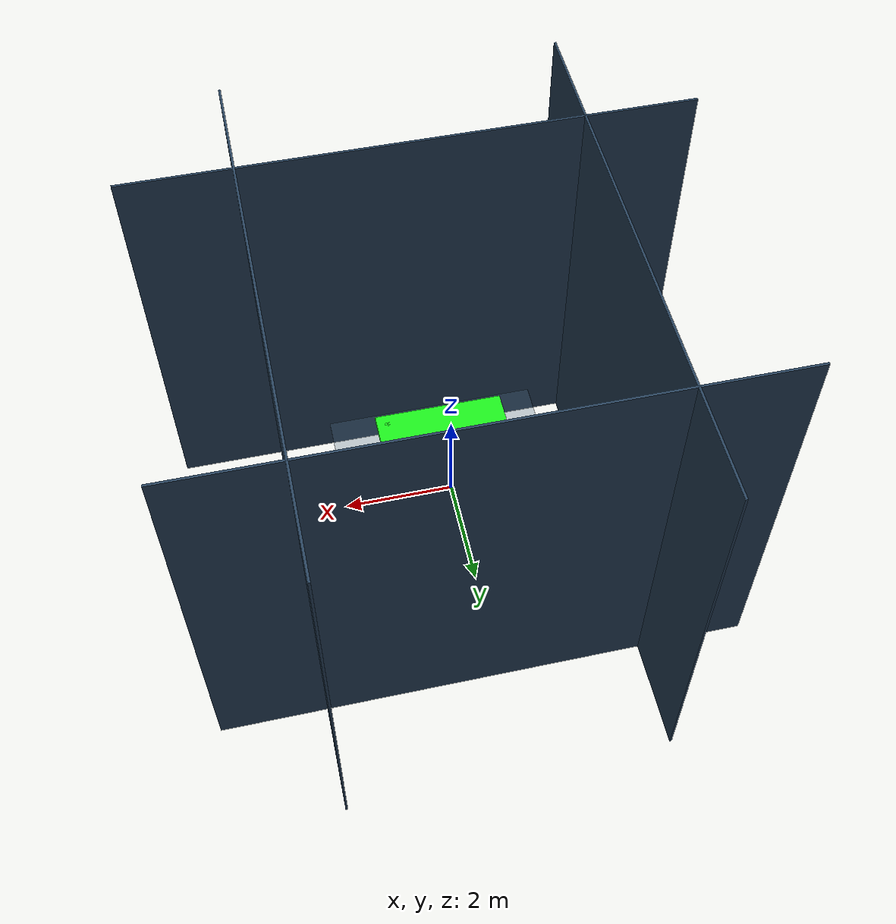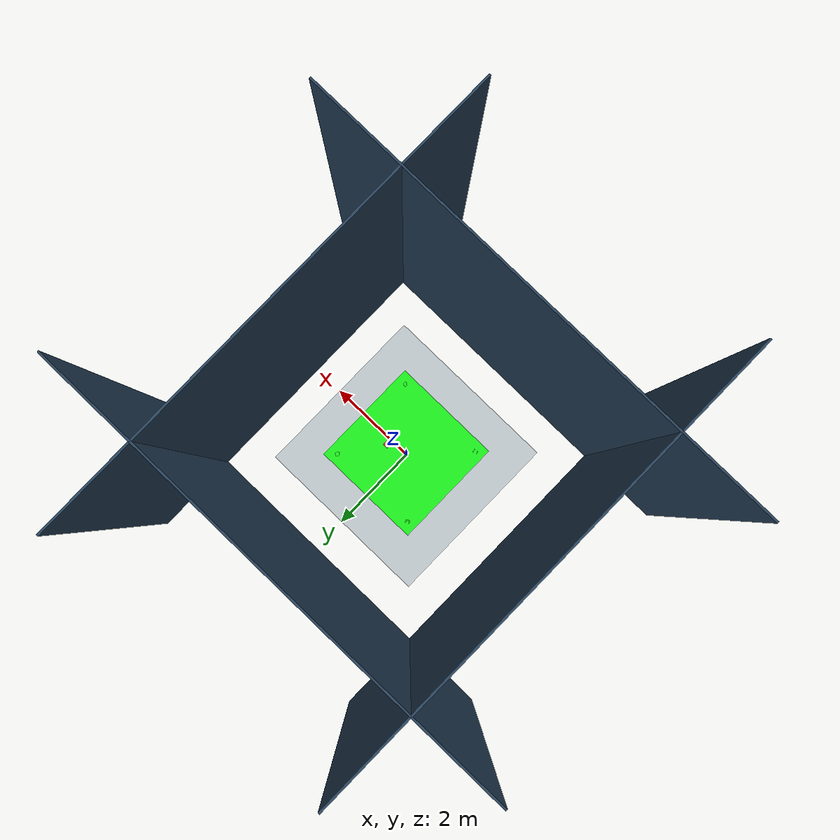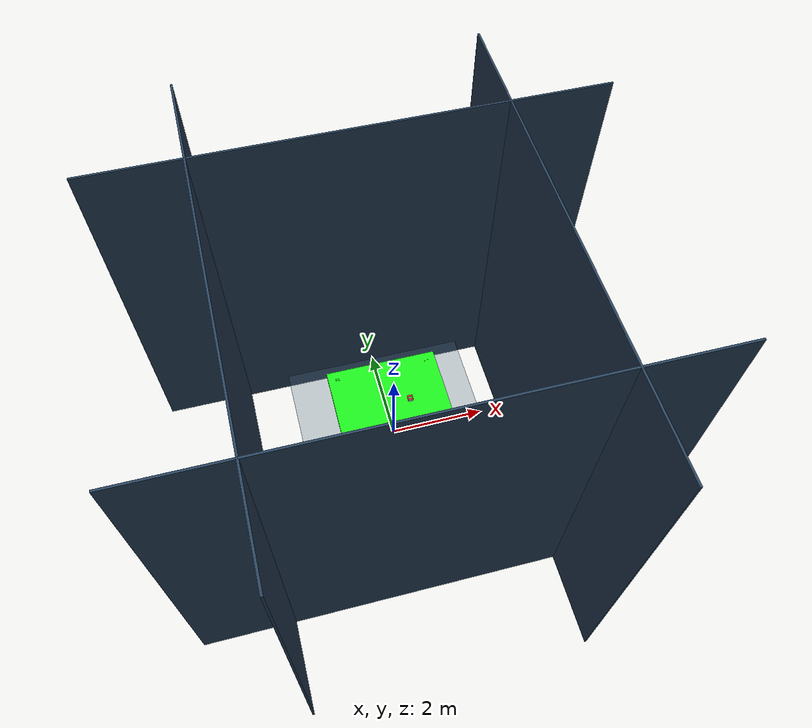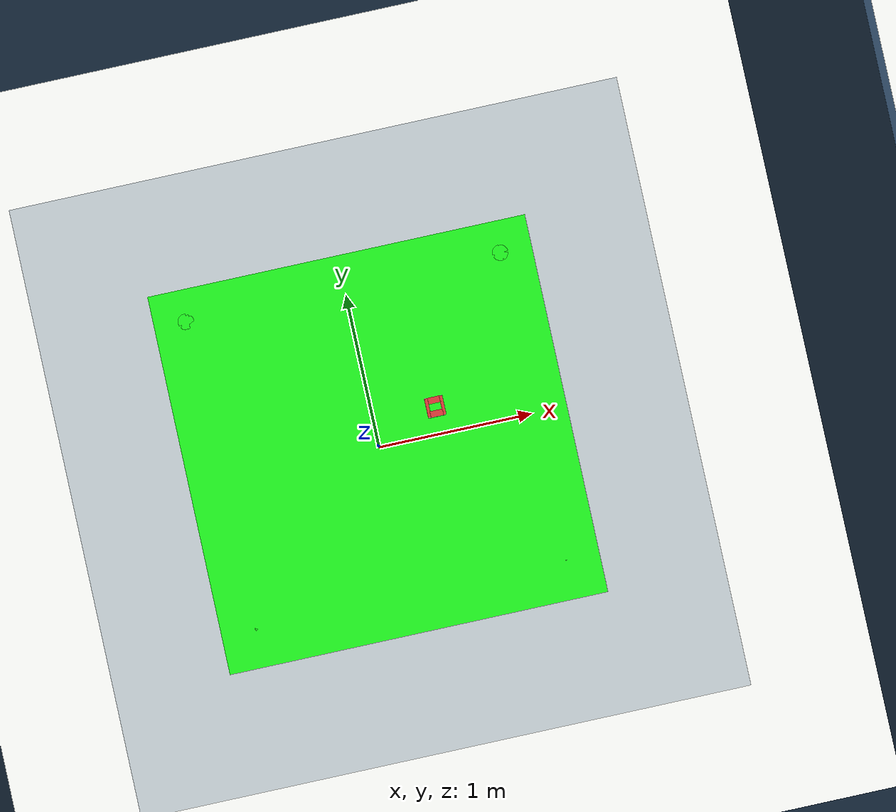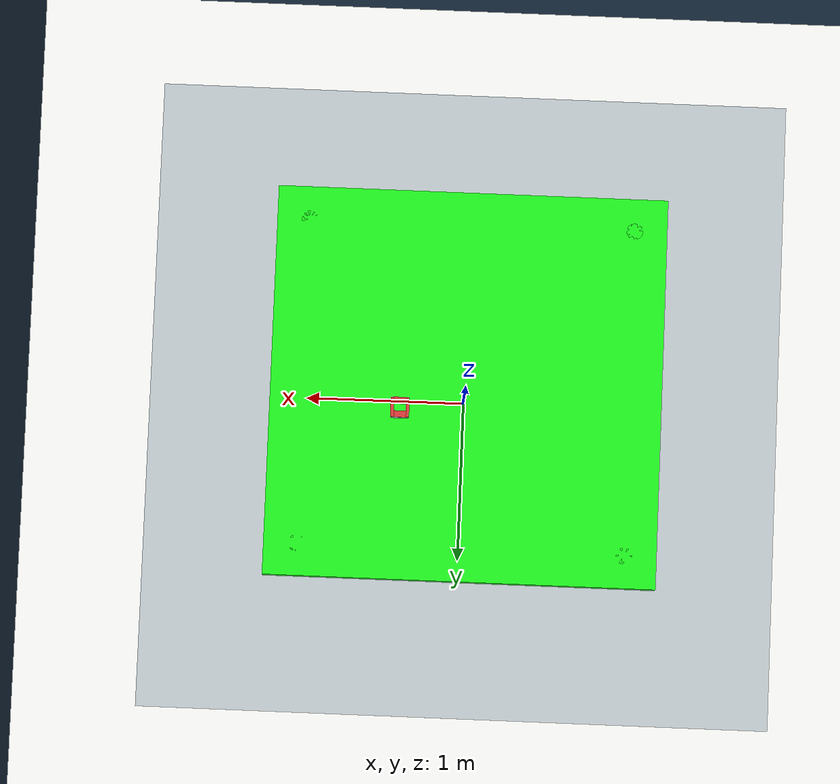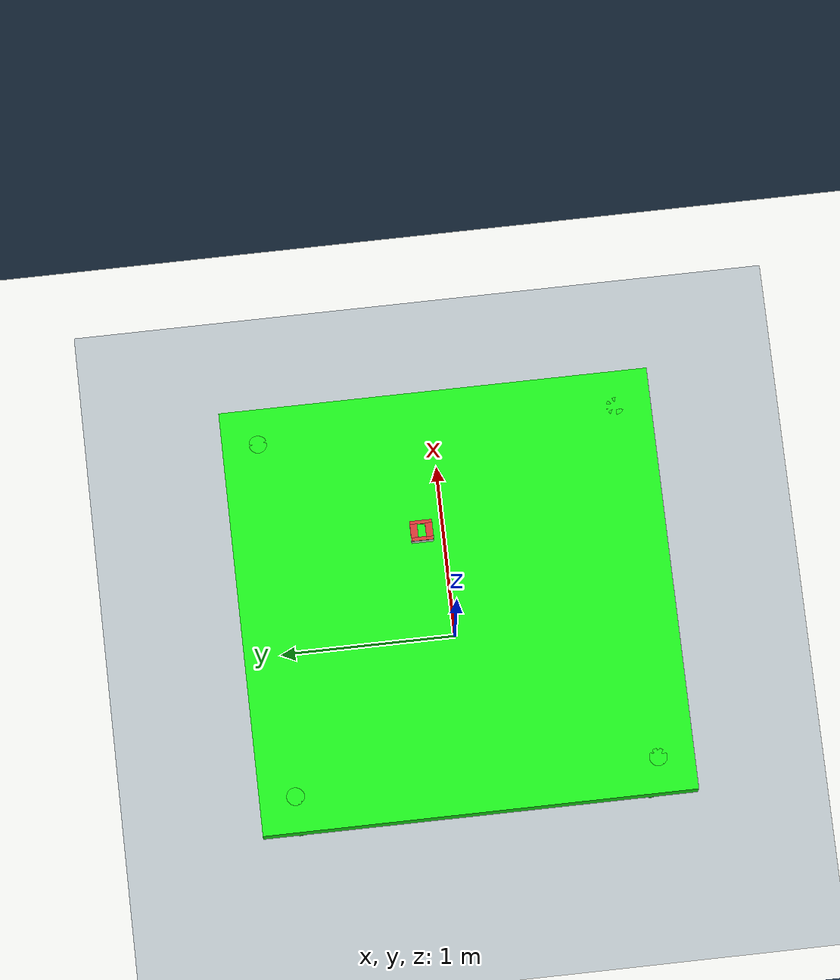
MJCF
<mujoco model="assembly_scene">
  <compiler angle="radian" />
  <option timestep="0.002"/>
  <include file="assembly_hole/assembly_hole.xml"/>
  <visual>
    <quality shadowsize="8192" />
  </visual>
  <default>
    <default class="visual">
      <geom group="3" type="mesh" contype="0" conaffinity="0"/>
    </default>
    <default class="collision">
      <geom group="2" type="mesh" solimp="0.9 0.95 0.001 0.5 2" solref="0.02 1" condim="6" />
    </default>
  </default>
  <asset>
    <texture type="skybox" builtin="gradient" rgb1="0.3 0.5 0.7" rgb2="0 0 0" width="512" height="3072"/>
    <texture type="2d" name="groundplane" builtin="checker" mark="edge" rgb1="0.2 0.3 0.4" rgb2="0.1 0.2 0.3" markrgb="0.8 0.8 0.8" width="300" height="300"/>
    <material name="groundplane" texture="groundplane" texuniform="true" texrepeat="5 5" reflectance="0.2"/>
    <material name="grid" texture="chequered" texrepeat="5 5" reflectance="0.2"/>
    <material name="Wood" rgba="0.1 0.9 0.1 1.0"/>
    <texture name="chequered" type="2d" builtin="checker" width="300" height="300"
             rgb1="0.2 0.3 0.4" rgb2="0.3 0.4 0.5"/>
  </asset>
  <statistic center='0 0 0' meansize='0.15'/>

  <worldbody>

    <body name="floor" pos="0 0 0">

      <geom type="plane" size="2 2 0.1" material="grid"/>
    </body>

    <body name="table" pos="0 0 0">
        <!-- Tabletop as a box geometry with Wood material -->
        <geom name="table_top" type="box" size="1.2 1.2 0.05" pos="0 0 0.95" material="Wood"/>
        <geom type="cylinder" size="0.05 0.5" pos="-1.0 -1.0 0.5" material="Wood"/>
        <geom type="cylinder" size="0.05 0.5" pos="1.0 -1.0 0.5" material="Wood"/>
        <geom type="cylinder" size="0.05 0.5" pos="-1.0 1.0 0.5" material="Wood"/>
        <geom type="cylinder" size="0.05 0.5" pos="1.0 1.0 0.5" material="Wood"/>
    </body>

    <body name="wall" pos="0 0 0">
        <!-- Tabletop as a box geometry with Wood material -->
        <geom name="wall_left" type="box" size="5 0.02 4" pos="0 -3 2" material="groundplane"/>
        <geom name="wall_back" type="box" size="0.02 5 4" pos="-3 0 2" material="groundplane"/>
        <geom name="wall_right" type="box" size="5 0.02 4" pos="0 3 2" material="groundplane"/>
        <geom name="wall_front" type="box" size="0.02 5 4" pos="3 0 2" material="groundplane"/>
    </body>

    <!-- workspace defined with two cylinder: outer - inner -->
    <body name="outer_workspace" pos="0.0 0.0 1.075" euler="0  0.0  0">
        <geom name="outer_workspace"  type="cylinder" size="0.53 0.001" rgba="0 1 0 0.15" conaffinity="0" contype="0" group="4"/>
    </body>
    <body name="inner_workspace" pos="0.0 0.0 1.0" euler="0  0.0  0">
        <geom name="inner_workspace" type="cylinder" size="0.27 0.001" rgba="1 0 0 0.15" conaffinity="0" contype="0" group="4"/>
    </body>

    <body name="workspace_center" euler="0  0.0  0" pos="0.0 0.0 1.0"></body>
    <body name="camera_center1" euler="0  0.0  0" pos="0.4 0.0 1.0"></body>
    <body name="camera_center2" euler="0  0.0  0" pos="0.5 0.0 1.0"></body>

    <body name="fixed_camera1" euler="0  0  0" pos="1.0 0.0 1.8">
      <camera name="fixed_camera1"  mode="targetbody" target="camera_center1" fovy="42.5" />
    </body>

    <body name="fixed_camera2" euler="0  0  0" pos="0.5 1.0 1.5">
      <camera name="fixed_camera2"  mode="targetbody" target="camera_center2" fovy="42.5" />
    </body>

    <light name="light_source" pos="1 1 2" mode="targetbody" target="workspace_center"/>
  </worldbody>
</mujoco>

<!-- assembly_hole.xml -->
<mujoco model="assembly_hole">

  <asset>
    <texture type="2d" name="hole" builtin="flat" rgb1="0.8 0.2 0.2" width="300" height="300"/>
    <material name="hole" texture="hole"/>

     <texture type="2d" name="hole_box" builtin="flat" rgb1="0.9 0.9 0.9" width="300" height="300"/>
    <material name="hole_box" texture="hole_box"/>

  </asset>

  <worldbody>
   <!-- table top is @ 1 m -->
    <body name="hole" pos="0.4 0.15 1.05" quat="1 0 0 0" mocap="true">
      <geom name="interactive_geom" type="box" pos="0.0 0.0 0.02" size="0.01 0.01  0.01" material="hole" group="5"  conaffinity="0" contype="0" />
      <body name="down" pos="-0.00 -0.042 0.0" quat="1 0 0 0">
        <geom name="down_geom" type="box" size="0.04 0.02  0.005" material="hole"/>
      </body>
      <body name="left" pos="-0.0468 0 0.0" quat="1 0 0 0">
        <geom name="left_geom" type="box" size="0.01 0.06 0.005" material="hole"/>
      </body>
      <body name="top" pos="0.0 0.042 0.0" quat="1 0 0 0">
        <geom name="top_geom" type="box" size="0.04 0.02 0.005" material="hole"/>
      </body>
      <body name="right" pos="0.0468 0 0.0" quat="1 0 0 0">
        <geom name="right_geom" type="box" size="0.01 0.06 0.005" material="hole"/>
      </body>
        <site name="hole_site" pos="0 0 -0.03" size="0.01" rgba="0.5 0.0 0.0 0.3" group="5"/>

      <body name="down_box" pos="-0.00 -0.06 -0.0375" quat="1 0 0 0">
        <geom name="down_box_geom" type="box" size="0.055 0.002  0.035" material="hole_box"/>
      </body>
      <body name="left_box" pos="-0.055 0 -0.0375" quat="1 0 0 0">
        <geom name="left_box_geom" type="box" size="0.002 0.06 0.035" material="hole_box"/>
      </body>
      <body name="top_box" pos="0.0 0.06 -0.0375" quat="1 0 0 0">
        <geom name="top_box_geom" type="box" size="0.055 0.002 0.035" material="hole_box"/>
      </body>
      <body name="right_box" pos="0.055 0 -0.0375" quat="1 0 0 0">
        <geom name="right_box_geom" type="box" size="0.002 0.06 0.035" material="hole_box"/>
      </body>
      <body name="bottom_box" pos="0.0 0 -0.07" quat="1 0 0 0">
        <geom name="bottom_box_geom" type="box" size="0.055 0.06 0.002" material="hole_box"/>
      </body>

    </body>

  </worldbody>

</mujoco>
